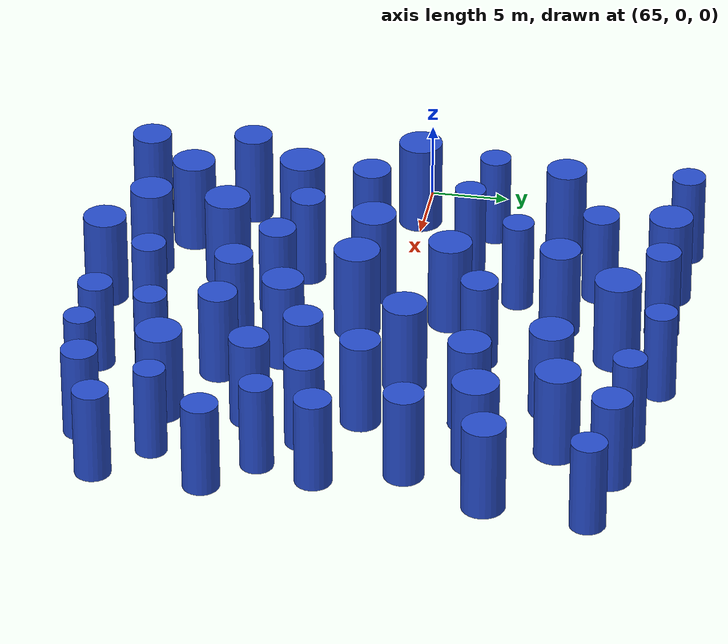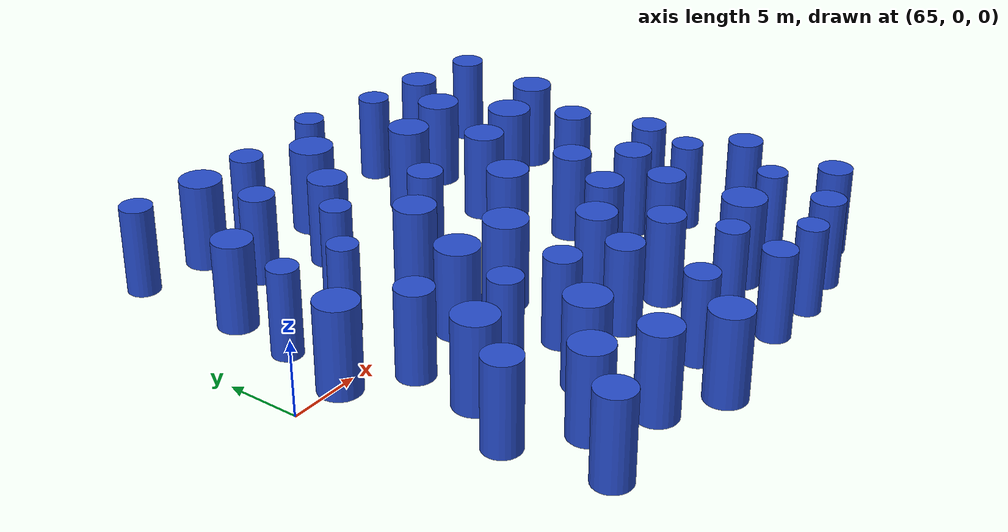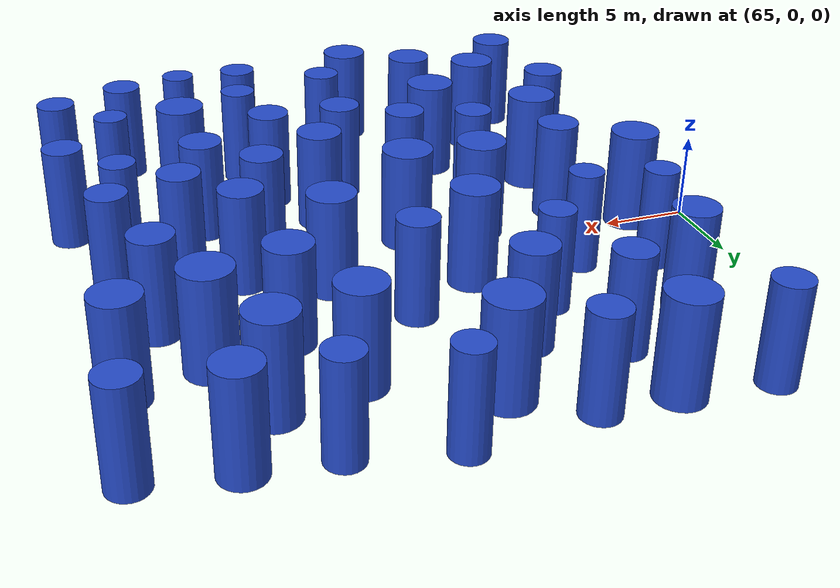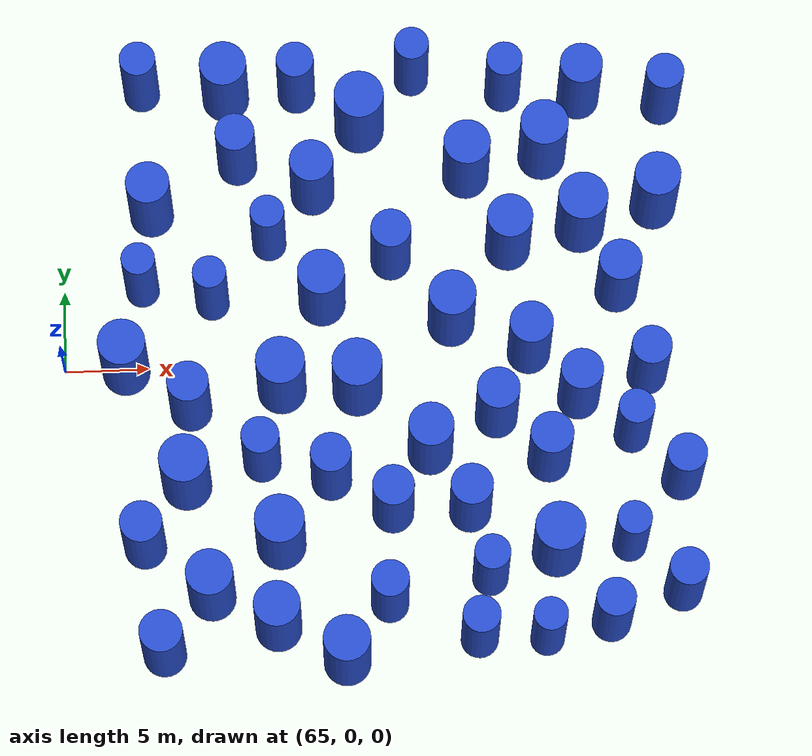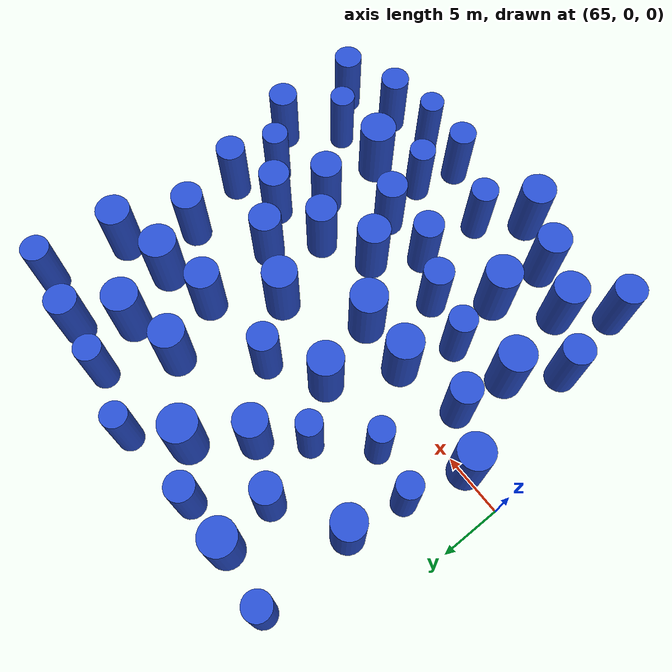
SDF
<sdf version="1.7">
 <world name="default">
  <model name="1">
   <static>1</static>
   <link name="link">
    <inertial>
     <mass>2</mass>
     <inertia><ixx>6.72296</ixx><ixy>0</ixy><ixz>0</ixz><iyy>6.72296</iyy><iyz>0</iyz><izz>1.44593</izz></inertia>
    </inertial>
    <collision name="collision">
     <geometry><cylinder><length>6</length><radius>1.20247</radius></cylinder></geometry>
     <surface><contact><collide_without_contact>1</collide_without_contact></contact></surface>
    </collision>
    <visual name="visual">
     <geometry><cylinder><length>6</length><radius>1.20247</radius></cylinder></geometry>
     <material>
      <script><uri>file://media/materials/scripts/gazebo.material</uri><name>Gazebo/Blue</name></script>
     </material>
    </visual>
    <gravity>0</gravity>
   </link>
   <pose>80.6973 -7.39447 3 0 -0 0</pose>
  </model>
  <model name="2">
   <static>1</static>
   <link name="link">
    <inertial>
     <mass>2</mass>
     <inertia><ixx>6.83423</ixx><ixy>0</ixy><ixz>0</ixz><iyy>6.83423</iyy><iyz>0</iyz><izz>1.66847</izz></inertia>
    </inertial>
    <collision name="collision">
     <geometry><cylinder><length>6</length><radius>1.29169</radius></cylinder></geometry>
     <surface><contact><collide_without_contact>1</collide_without_contact></contact></surface>
    </collision>
    <visual name="visual">
     <geometry><cylinder><length>6</length><radius>1.29169</radius></cylinder></geometry>
     <material>
      <script><uri>file://media/materials/scripts/gazebo.material</uri><name>Gazebo/Blue</name></script>
     </material>
    </visual>
    <gravity>0</gravity>
   </link>
   <pose>92.757 0.175366 3 0 -0 0</pose>
  </model>
  <model name="4">
   <static>1</static>
   <link name="link">
    <inertial>
     <mass>2</mass>
     <inertia><ixx>7.11213</ixx><ixy>0</ixy><ixz>0</ixz><iyy>7.11213</iyy><iyz>0</iyz><izz>2.22425</izz></inertia>
    </inertial>
    <collision name="collision">
     <geometry><cylinder><length>6</length><radius>1.49139</radius></cylinder></geometry>
     <surface><contact><collide_without_contact>1</collide_without_contact></contact></surface>
    </collision>
    <visual name="visual">
     <geometry><cylinder><length>6</length><radius>1.49139</radius></cylinder></geometry>
     <material>
      <script><uri>file://media/materials/scripts/gazebo.material</uri><name>Gazebo/Blue</name></script>
     </material>
    </visual>
    <gravity>0</gravity>
   </link>
   <pose>83.0964 14.8871 3 0 -0 0</pose>
  </model>
  <model name="5">
   <static>1</static>
   <link name="link">
    <inertial>
     <mass>2</mass>
     <inertia><ixx>6.9315</ixx><ixy>0</ixy><ixz>0</ixz><iyy>6.9315</iyy><iyz>0</iyz><izz>1.863</izz></inertia>
    </inertial>
    <collision name="collision">
     <geometry><cylinder><length>6</length><radius>1.36492</radius></cylinder></geometry>
     <surface><contact><collide_without_contact>1</collide_without_contact></contact></surface>
    </collision>
    <visual name="visual">
     <geometry><cylinder><length>6</length><radius>1.36492</radius></cylinder></geometry>
     <material>
      <script><uri>file://media/materials/scripts/gazebo.material</uri><name>Gazebo/Blue</name></script>
     </material>
    </visual>
    <gravity>0</gravity>
   </link>
   <pose>91.7951 6.85711 3 0 -0 0</pose>
  </model>
  <model name="9">
   <static>1</static>
   <link name="link">
    <inertial>
     <mass>2</mass>
     <inertia><ixx>6.71929</ixx><ixy>0</ixy><ixz>0</ixz><iyy>6.71929</iyy><iyz>0</iyz><izz>1.43859</izz></inertia>
    </inertial>
    <collision name="collision">
     <geometry><cylinder><length>6</length><radius>1.19941</radius></cylinder></geometry>
     <surface><contact><collide_without_contact>1</collide_without_contact></contact></surface>
    </collision>
    <visual name="visual">
     <geometry><cylinder><length>6</length><radius>1.19941</radius></cylinder></geometry>
     <material>
      <script><uri>file://media/materials/scripts/gazebo.material</uri><name>Gazebo/Blue</name></script>
     </material>
    </visual>
    <gravity>0</gravity>
   </link>
   <pose>84.7053 6.32276 3 0 -0 0</pose>
  </model>
  <model name="10">
   <static>1</static>
   <link name="link">
    <inertial>
     <mass>2</mass>
     <inertia><ixx>6.77724</ixx><ixy>0</ixy><ixz>0</ixz><iyy>6.77724</iyy><iyz>0</iyz><izz>1.55448</izz></inertia>
    </inertial>
    <collision name="collision">
     <geometry><cylinder><length>6</length><radius>1.24679</radius></cylinder></geometry>
     <surface><contact><collide_without_contact>1</collide_without_contact></contact></surface>
    </collision>
    <visual name="visual">
     <geometry><cylinder><length>6</length><radius>1.24679</radius></cylinder></geometry>
     <material>
      <script><uri>file://media/materials/scripts/gazebo.material</uri><name>Gazebo/Blue</name></script>
     </material>
    </visual>
    <gravity>0</gravity>
   </link>
   <pose>88.8436 -9.60499 3 0 -0 0</pose>
  </model>
  <model name="12">
   <static>1</static>
   <link name="link">
    <inertial>
     <mass>2</mass>
     <inertia><ixx>7.10079</ixx><ixy>0</ixy><ixz>0</ixz><iyy>7.10079</iyy><iyz>0</iyz><izz>2.20157</izz></inertia>
    </inertial>
    <collision name="collision">
     <geometry><cylinder><length>6</length><radius>1.48377</radius></cylinder></geometry>
     <surface><contact><collide_without_contact>1</collide_without_contact></contact></surface>
    </collision>
    <visual name="visual">
     <geometry><cylinder><length>6</length><radius>1.48377</radius></cylinder></geometry>
     <material>
      <script><uri>file://media/materials/scripts/gazebo.material</uri><name>Gazebo/Blue</name></script>
     </material>
    </visual>
    <gravity>0</gravity>
   </link>
   <pose>82.4183 -1.92681 3 0 -0 0</pose>
  </model>
  <model name="14">
   <static>1</static>
   <link name="link">
    <inertial>
     <mass>2</mass>
     <inertia><ixx>6.81118</ixx><ixy>0</ixy><ixz>0</ixz><iyy>6.81118</iyy><iyz>0</iyz><izz>1.62236</izz></inertia>
    </inertial>
    <collision name="collision">
     <geometry><cylinder><length>6</length><radius>1.27372</radius></cylinder></geometry>
     <surface><contact><collide_without_contact>1</collide_without_contact></contact></surface>
    </collision>
    <visual name="visual">
     <geometry><cylinder><length>6</length><radius>1.27372</radius></cylinder></geometry>
     <material>
      <script><uri>file://media/materials/scripts/gazebo.material</uri><name>Gazebo/Blue</name></script>
     </material>
    </visual>
    <gravity>0</gravity>
   </link>
   <pose>98.2023 3.86457 3 0 -0 0</pose>
  </model>
  <model name="18">
   <static>1</static>
   <link name="link">
    <inertial>
     <mass>2</mass>
     <inertia><ixx>7.03448</ixx><ixy>0</ixy><ixz>0</ixz><iyy>7.03448</iyy><iyz>0</iyz><izz>2.06895</izz></inertia>
    </inertial>
    <collision name="collision">
     <geometry><cylinder><length>6</length><radius>1.43839</radius></cylinder></geometry>
     <surface><contact><collide_without_contact>1</collide_without_contact></contact></surface>
    </collision>
    <visual name="visual">
     <geometry><cylinder><length>6</length><radius>1.43839</radius></cylinder></geometry>
     <material>
      <script><uri>file://media/materials/scripts/gazebo.material</uri><name>Gazebo/Blue</name></script>
     </material>
    </visual>
    <gravity>0</gravity>
   </link>
   <pose>94.1201 12.7132 3 0 -0 0</pose>
  </model>
  <model name="20">
   <static>1</static>
   <link name="link">
    <inertial>
     <mass>2</mass>
     <inertia><ixx>6.64731</ixx><ixy>0</ixy><ixz>0</ixz><iyy>6.64731</iyy><iyz>0</iyz><izz>1.29463</izz></inertia>
    </inertial>
    <collision name="collision">
     <geometry><cylinder><length>6</length><radius>1.13782</radius></cylinder></geometry>
     <surface><contact><collide_without_contact>1</collide_without_contact></contact></surface>
    </collision>
    <visual name="visual">
     <geometry><cylinder><length>6</length><radius>1.13782</radius></cylinder></geometry>
     <material>
      <script><uri>file://media/materials/scripts/gazebo.material</uri><name>Gazebo/Blue</name></script>
     </material>
    </visual>
    <gravity>0</gravity>
   </link>
   <pose>101.496 15.7288 3 0 -0 0</pose>
  </model>
  <model name="23">
   <static>1</static>
   <link name="link">
    <inertial>
     <mass>2</mass>
     <inertia><ixx>6.61631</ixx><ixy>0</ixy><ixz>0</ixz><iyy>6.61631</iyy><iyz>0</iyz><izz>1.23261</izz></inertia>
    </inertial>
    <collision name="collision">
     <geometry><cylinder><length>6</length><radius>1.11023</radius></cylinder></geometry>
     <surface><contact><collide_without_contact>1</collide_without_contact></contact></surface>
    </collision>
    <visual name="visual">
     <geometry><cylinder><length>6</length><radius>1.11023</radius></cylinder></geometry>
     <material>
      <script><uri>file://media/materials/scripts/gazebo.material</uri><name>Gazebo/Blue</name></script>
     </material>
    </visual>
    <gravity>0</gravity>
   </link>
   <pose>83.8898 -15.0889 3 0 -0 0</pose>
  </model>
  <model name="25">
   <static>1</static>
   <link name="link">
    <inertial>
     <mass>2</mass>
     <inertia><ixx>6.80277</ixx><ixy>0</ixy><ixz>0</ixz><iyy>6.80277</iyy><iyz>0</iyz><izz>1.60554</izz></inertia>
    </inertial>
    <collision name="collision">
     <geometry><cylinder><length>6</length><radius>1.2671</radius></cylinder></geometry>
     <surface><contact><collide_without_contact>1</collide_without_contact></contact></surface>
    </collision>
    <visual name="visual">
     <geometry><cylinder><length>6</length><radius>1.2671</radius></cylinder></geometry>
     <material>
      <script><uri>file://media/materials/scripts/gazebo.material</uri><name>Gazebo/Blue</name></script>
     </material>
    </visual>
    <gravity>0</gravity>
   </link>
   <pose>70.6013 -17.7327 3 0 -0 0</pose>
  </model>
  <model name="27">
   <static>1</static>
   <link name="link">
    <inertial>
     <mass>2</mass>
     <inertia><ixx>6.51088</ixx><ixy>0</ixy><ixz>0</ixz><iyy>6.51088</iyy><iyz>0</iyz><izz>1.02175</izz></inertia>
    </inertial>
    <collision name="collision">
     <geometry><cylinder><length>6</length><radius>1.01082</radius></cylinder></geometry>
     <surface><contact><collide_without_contact>1</collide_without_contact></contact></surface>
    </collision>
    <visual name="visual">
     <geometry><cylinder><length>6</length><radius>1.01082</radius></cylinder></geometry>
     <material>
      <script><uri>file://media/materials/scripts/gazebo.material</uri><name>Gazebo/Blue</name></script>
     </material>
    </visual>
    <gravity>0</gravity>
   </link>
   <pose>98.1711 -11.9642 3 0 -0 0</pose>
  </model>
  <model name="31">
   <static>1</static>
   <link name="link">
    <inertial>
     <mass>2</mass>
     <inertia><ixx>6.69535</ixx><ixy>0</ixy><ixz>0</ixz><iyy>6.69535</iyy><iyz>0</iyz><izz>1.3907</izz></inertia>
    </inertial>
    <collision name="collision">
     <geometry><cylinder><length>6</length><radius>1.17928</radius></cylinder></geometry>
     <surface><contact><collide_without_contact>1</collide_without_contact></contact></surface>
    </collision>
    <visual name="visual">
     <geometry><cylinder><length>6</length><radius>1.17928</radius></cylinder></geometry>
     <material>
      <script><uri>file://media/materials/scripts/gazebo.material</uri><name>Gazebo/Blue</name></script>
     </material>
    </visual>
    <gravity>0</gravity>
   </link>
   <pose>75.6136 12.7351 3 0 -0 0</pose>
  </model>
  <model name="32">
   <static>1</static>
   <link name="link">
    <inertial>
     <mass>2</mass>
     <inertia><ixx>6.5883</ixx><ixy>0</ixy><ixz>0</ixz><iyy>6.5883</iyy><iyz>0</iyz><izz>1.1766</izz></inertia>
    </inertial>
    <collision name="collision">
     <geometry><cylinder><length>6</length><radius>1.08471</radius></cylinder></geometry>
     <surface><contact><collide_without_contact>1</collide_without_contact></contact></surface>
    </collision>
    <visual name="visual">
     <geometry><cylinder><length>6</length><radius>1.08471</radius></cylinder></geometry>
     <material>
      <script><uri>file://media/materials/scripts/gazebo.material</uri><name>Gazebo/Blue</name></script>
     </material>
    </visual>
    <gravity>0</gravity>
   </link>
   <pose>69.8895 17.6498 3 0 -0 0</pose>
  </model>
  <model name="33">
   <static>1</static>
   <link name="link">
    <inertial>
     <mass>2</mass>
     <inertia><ixx>6.89526</ixx><ixy>0</ixy><ixz>0</ixz><iyy>6.89526</iyy><iyz>0</iyz><izz>1.79051</izz></inertia>
    </inertial>
    <collision name="collision">
     <geometry><cylinder><length>6</length><radius>1.3381</radius></cylinder></geometry>
     <surface><contact><collide_without_contact>1</collide_without_contact></contact></surface>
    </collision>
    <visual name="visual">
     <geometry><cylinder><length>6</length><radius>1.3381</radius></cylinder></geometry>
     <material>
      <script><uri>file://media/materials/scripts/gazebo.material</uri><name>Gazebo/Blue</name></script>
     </material>
    </visual>
    <gravity>0</gravity>
   </link>
   <pose>86.618 -5.88549 3 0 -0 0</pose>
  </model>
  <model name="36">
   <static>1</static>
   <link name="link">
    <inertial>
     <mass>2</mass>
     <inertia><ixx>6.63334</ixx><ixy>0</ixy><ixz>0</ixz><iyy>6.63334</iyy><iyz>0</iyz><izz>1.26667</izz></inertia>
    </inertial>
    <collision name="collision">
     <geometry><cylinder><length>6</length><radius>1.12547</radius></cylinder></geometry>
     <surface><contact><collide_without_contact>1</collide_without_contact></contact></surface>
    </collision>
    <visual name="visual">
     <geometry><cylinder><length>6</length><radius>1.12547</radius></cylinder></geometry>
     <material>
      <script><uri>file://media/materials/scripts/gazebo.material</uri><name>Gazebo/Blue</name></script>
     </material>
    </visual>
    <gravity>0</gravity>
   </link>
   <pose>76.6137 -6.194 3 0 -0 0</pose>
  </model>
  <model name="44">
   <static>1</static>
   <link name="link">
    <inertial>
     <mass>2</mass>
     <inertia><ixx>6.98634</ixx><ixy>0</ixy><ixz>0</ixz><iyy>6.98634</iyy><iyz>0</iyz><izz>1.97268</izz></inertia>
    </inertial>
    <collision name="collision">
     <geometry><cylinder><length>6</length><radius>1.40452</radius></cylinder></geometry>
     <surface><contact><collide_without_contact>1</collide_without_contact></contact></surface>
    </collision>
    <visual name="visual">
     <geometry><cylinder><length>6</length><radius>1.40452</radius></cylinder></geometry>
     <material>
      <script><uri>file://media/materials/scripts/gazebo.material</uri><name>Gazebo/Blue</name></script>
     </material>
    </visual>
    <gravity>0</gravity>
   </link>
   <pose>89.4482 11.619 3 0 -0 0</pose>
  </model>
  <model name="50">
   <static>1</static>
   <link name="link">
    <inertial>
     <mass>2</mass>
     <inertia><ixx>6.81815</ixx><ixy>0</ixy><ixz>0</ixz><iyy>6.81815</iyy><iyz>0</iyz><izz>1.6363</izz></inertia>
    </inertial>
    <collision name="collision">
     <geometry><cylinder><length>6</length><radius>1.27918</radius></cylinder></geometry>
     <surface><contact><collide_without_contact>1</collide_without_contact></contact></surface>
    </collision>
    <visual name="visual">
     <geometry><cylinder><length>6</length><radius>1.27918</radius></cylinder></geometry>
     <material>
      <script><uri>file://media/materials/scripts/gazebo.material</uri><name>Gazebo/Blue</name></script>
     </material>
    </visual>
    <gravity>0</gravity>
   </link>
   <pose>96.5079 16.4159 3 0 -0 0</pose>
  </model>
  <model name="51">
   <static>1</static>
   <link name="link">
    <inertial>
     <mass>2</mass>
     <inertia><ixx>6.52122</ixx><ixy>0</ixy><ixz>0</ixz><iyy>6.52122</iyy><iyz>0</iyz><izz>1.04245</izz></inertia>
    </inertial>
    <collision name="collision">
     <geometry><cylinder><length>6</length><radius>1.021</radius></cylinder></geometry>
     <surface><contact><collide_without_contact>1</collide_without_contact></contact></surface>
    </collision>
    <visual name="visual">
     <geometry><cylinder><length>6</length><radius>1.021</radius></cylinder></geometry>
     <material>
      <script><uri>file://media/materials/scripts/gazebo.material</uri><name>Gazebo/Blue</name></script>
     </material>
    </visual>
    <gravity>0</gravity>
   </link>
   <pose>77.4047 7.64189 3 0 -0 0</pose>
  </model>
  <model name="56">
   <static>1</static>
   <link name="link">
    <inertial>
     <mass>2</mass>
     <inertia><ixx>6.53606</ixx><ixy>0</ixy><ixz>0</ixz><iyy>6.53606</iyy><iyz>0</iyz><izz>1.07212</izz></inertia>
    </inertial>
    <collision name="collision">
     <geometry><cylinder><length>6</length><radius>1.03543</radius></cylinder></geometry>
     <surface><contact><collide_without_contact>1</collide_without_contact></contact></surface>
    </collision>
    <visual name="visual">
     <geometry><cylinder><length>6</length><radius>1.03543</radius></cylinder></geometry>
     <material>
      <script><uri>file://media/materials/scripts/gazebo.material</uri><name>Gazebo/Blue</name></script>
     </material>
    </visual>
    <gravity>0</gravity>
   </link>
   <pose>86.379 18.063 3 0 -0 0</pose>
  </model>
  <model name="57">
   <static>1</static>
   <link name="link">
    <inertial>
     <mass>2</mass>
     <inertia><ixx>6.76823</ixx><ixy>0</ixy><ixz>0</ixz><iyy>6.76823</iyy><iyz>0</iyz><izz>1.53647</izz></inertia>
    </inertial>
    <collision name="collision">
     <geometry><cylinder><length>6</length><radius>1.23954</radius></cylinder></geometry>
     <surface><contact><collide_without_contact>1</collide_without_contact></contact></surface>
    </collision>
    <visual name="visual">
     <geometry><cylinder><length>6</length><radius>1.23954</radius></cylinder></geometry>
     <material>
      <script><uri>file://media/materials/scripts/gazebo.material</uri><name>Gazebo/Blue</name></script>
     </material>
    </visual>
    <gravity>0</gravity>
   </link>
   <pose>72.4647 -2.75646 3 0 -0 0</pose>
  </model>
  <model name="58">
   <static>1</static>
   <link name="link">
    <inertial>
     <mass>2</mass>
     <inertia><ixx>6.93486</ixx><ixy>0</ixy><ixz>0</ixz><iyy>6.93486</iyy><iyz>0</iyz><izz>1.86972</izz></inertia>
    </inertial>
    <collision name="collision">
     <geometry><cylinder><length>6</length><radius>1.36738</radius></cylinder></geometry>
     <surface><contact><collide_without_contact>1</collide_without_contact></contact></surface>
    </collision>
    <visual name="visual">
     <geometry><cylinder><length>6</length><radius>1.36738</radius></cylinder></geometry>
     <material>
      <script><uri>file://media/materials/scripts/gazebo.material</uri><name>Gazebo/Blue</name></script>
     </material>
    </visual>
    <gravity>0</gravity>
   </link>
   <pose>77.3036 -16.3536 3 0 -0 0</pose>
  </model>
  <model name="62">
   <static>1</static>
   <link name="link">
    <inertial>
     <mass>2</mass>
     <inertia><ixx>6.81051</ixx><ixy>0</ixy><ixz>0</ixz><iyy>6.81051</iyy><iyz>0</iyz><izz>1.62103</izz></inertia>
    </inertial>
    <collision name="collision">
     <geometry><cylinder><length>6</length><radius>1.2732</radius></cylinder></geometry>
     <surface><contact><collide_without_contact>1</collide_without_contact></contact></surface>
    </collision>
    <visual name="visual">
     <geometry><cylinder><length>6</length><radius>1.2732</radius></cylinder></geometry>
     <material>
      <script><uri>file://media/materials/scripts/gazebo.material</uri><name>Gazebo/Blue</name></script>
     </material>
    </visual>
    <gravity>0</gravity>
   </link>
   <pose>93.6427 -6.6495 3 0 -0 0</pose>
  </model>
  <model name="63">
   <static>1</static>
   <link name="link">
    <inertial>
     <mass>2</mass>
     <inertia><ixx>6.7804</ixx><ixy>0</ixy><ixz>0</ixz><iyy>6.7804</iyy><iyz>0</iyz><izz>1.56081</izz></inertia>
    </inertial>
    <collision name="collision">
     <geometry><cylinder><length>6</length><radius>1.24932</radius></cylinder></geometry>
     <surface><contact><collide_without_contact>1</collide_without_contact></contact></surface>
    </collision>
    <visual name="visual">
     <geometry><cylinder><length>6</length><radius>1.24932</radius></cylinder></geometry>
     <material>
      <script><uri>file://media/materials/scripts/gazebo.material</uri><name>Gazebo/Blue</name></script>
     </material>
    </visual>
    <gravity>0</gravity>
   </link>
   <pose>69.5819 -11.1757 3 0 -0 0</pose>
  </model>
  <model name="64">
   <static>1</static>
   <link name="link">
    <inertial>
     <mass>2</mass>
     <inertia><ixx>6.61537</ixx><ixy>0</ixy><ixz>0</ixz><iyy>6.61537</iyy><iyz>0</iyz><izz>1.23074</izz></inertia>
    </inertial>
    <collision name="collision">
     <geometry><cylinder><length>6</length><radius>1.10939</radius></cylinder></geometry>
     <surface><contact><collide_without_contact>1</collide_without_contact></contact></surface>
    </collision>
    <visual name="visual">
     <geometry><cylinder><length>6</length><radius>1.10939</radius></cylinder></geometry>
     <material>
      <script><uri>file://media/materials/scripts/gazebo.material</uri><name>Gazebo/Blue</name></script>
     </material>
    </visual>
    <gravity>0</gravity>
   </link>
   <pose>89.071 -17.4014 3 0 -0 0</pose>
  </model>
  <model name="68">
   <static>1</static>
   <link name="link">
    <inertial>
     <mass>2</mass>
     <inertia><ixx>6.95071</ixx><ixy>0</ixy><ixz>0</ixz><iyy>6.95071</iyy><iyz>0</iyz><izz>1.90143</izz></inertia>
    </inertial>
    <collision name="collision">
     <geometry><cylinder><length>6</length><radius>1.37892</radius></cylinder></geometry>
     <surface><contact><collide_without_contact>1</collide_without_contact></contact></surface>
    </collision>
    <visual name="visual">
     <geometry><cylinder><length>6</length><radius>1.37892</radius></cylinder></geometry>
     <material>
      <script><uri>file://media/materials/scripts/gazebo.material</uri><name>Gazebo/Blue</name></script>
     </material>
    </visual>
    <gravity>0</gravity>
   </link>
   <pose>100.7 9.19752 3 0 -0 0</pose>
  </model>
  <model name="73">
   <static>1</static>
   <link name="link">
    <inertial>
     <mass>2</mass>
     <inertia><ixx>7.05981</ixx><ixy>0</ixy><ixz>0</ixz><iyy>7.05981</iyy><iyz>0</iyz><izz>2.11962</izz></inertia>
    </inertial>
    <collision name="collision">
     <geometry><cylinder><length>6</length><radius>1.45589</radius></cylinder></geometry>
     <surface><contact><collide_without_contact>1</collide_without_contact></contact></surface>
    </collision>
    <visual name="visual">
     <geometry><cylinder><length>6</length><radius>1.45589</radius></cylinder></geometry>
     <material>
      <script><uri>file://media/materials/scripts/gazebo.material</uri><name>Gazebo/Blue</name></script>
     </material>
    </visual>
    <gravity>0</gravity>
   </link>
   <pose>77.9144 -1.65153 3 0 -0 0</pose>
  </model>
  <model name="79">
   <static>1</static>
   <link name="link">
    <inertial>
     <mass>2</mass>
     <inertia><ixx>6.56349</ixx><ixy>0</ixy><ixz>0</ixz><iyy>6.56349</iyy><iyz>0</iyz><izz>1.12698</izz></inertia>
    </inertial>
    <collision name="collision">
     <geometry><cylinder><length>6</length><radius>1.06159</radius></cylinder></geometry>
     <surface><contact><collide_without_contact>1</collide_without_contact></contact></surface>
    </collision>
    <visual name="visual">
     <geometry><cylinder><length>6</length><radius>1.06159</radius></cylinder></geometry>
     <material>
      <script><uri>file://media/materials/scripts/gazebo.material</uri><name>Gazebo/Blue</name></script>
     </material>
    </visual>
    <gravity>0</gravity>
   </link>
   <pose>98.6614 -5.21791 3 0 -0 0</pose>
  </model>
  <model name="80">
   <static>1</static>
   <link name="link">
    <inertial>
     <mass>2</mass>
     <inertia><ixx>6.65702</ixx><ixy>0</ixy><ixz>0</ixz><iyy>6.65702</iyy><iyz>0</iyz><izz>1.31404</izz></inertia>
    </inertial>
    <collision name="collision">
     <geometry><cylinder><length>6</length><radius>1.14632</radius></cylinder></geometry>
     <surface><contact><collide_without_contact>1</collide_without_contact></contact></surface>
    </collision>
    <visual name="visual">
     <geometry><cylinder><length>6</length><radius>1.14632</radius></cylinder></geometry>
     <material>
      <script><uri>file://media/materials/scripts/gazebo.material</uri><name>Gazebo/Blue</name></script>
     </material>
    </visual>
    <gravity>0</gravity>
   </link>
   <pose>101.165 -14.9856 3 0 -0 0</pose>
  </model>
  <model name="81">
   <static>1</static>
   <link name="link">
    <inertial>
     <mass>2</mass>
     <inertia><ixx>6.58126</ixx><ixy>0</ixy><ixz>0</ixz><iyy>6.58126</iyy><iyz>0</iyz><izz>1.16252</izz></inertia>
    </inertial>
    <collision name="collision">
     <geometry><cylinder><length>6</length><radius>1.0782</radius></cylinder></geometry>
     <surface><contact><collide_without_contact>1</collide_without_contact></contact></surface>
    </collision>
    <visual name="visual">
     <geometry><cylinder><length>6</length><radius>1.0782</radius></cylinder></geometry>
     <material>
      <script><uri>file://media/materials/scripts/gazebo.material</uri><name>Gazebo/Blue</name></script>
     </material>
    </visual>
    <gravity>0</gravity>
   </link>
   <pose>91.91 16.8661 3 0 -0 0</pose>
  </model>
  <model name="82">
   <static>1</static>
   <link name="link">
    <inertial>
     <mass>2</mass>
     <inertia><ixx>6.67042</ixx><ixy>0</ixy><ixz>0</ixz><iyy>6.67042</iyy><iyz>0</iyz><izz>1.34084</izz></inertia>
    </inertial>
    <collision name="collision">
     <geometry><cylinder><length>6</length><radius>1.15795</radius></cylinder></geometry>
     <surface><contact><collide_without_contact>1</collide_without_contact></contact></surface>
    </collision>
    <visual name="visual">
     <geometry><cylinder><length>6</length><radius>1.15795</radius></cylinder></geometry>
     <material>
      <script><uri>file://media/materials/scripts/gazebo.material</uri><name>Gazebo/Blue</name></script>
     </material>
    </visual>
    <gravity>0</gravity>
   </link>
   <pose>96.8535 -16.6618 3 0 -0 0</pose>
  </model>
  <model name="86">
   <static>1</static>
   <link name="link">
    <inertial>
     <mass>2</mass>
     <inertia><ixx>6.8639</ixx><ixy>0</ixy><ixz>0</ixz><iyy>6.8639</iyy><iyz>0</iyz><izz>1.72781</izz></inertia>
    </inertial>
    <collision name="collision">
     <geometry><cylinder><length>6</length><radius>1.31446</radius></cylinder></geometry>
     <surface><contact><collide_without_contact>1</collide_without_contact></contact></surface>
    </collision>
    <visual name="visual">
     <geometry><cylinder><length>6</length><radius>1.31446</radius></cylinder></geometry>
     <material>
      <script><uri>file://media/materials/scripts/gazebo.material</uri><name>Gazebo/Blue</name></script>
     </material>
    </visual>
    <gravity>0</gravity>
   </link>
   <pose>70.3495 9.71984 3 0 -0 0</pose>
  </model>
  <model name="90">
   <static>1</static>
   <link name="link">
    <inertial>
     <mass>2</mass>
     <inertia><ixx>6.86273</ixx><ixy>0</ixy><ixz>0</ixz><iyy>6.86273</iyy><iyz>0</iyz><izz>1.72547</izz></inertia>
    </inertial>
    <collision name="collision">
     <geometry><cylinder><length>6</length><radius>1.31357</radius></cylinder></geometry>
     <surface><contact><collide_without_contact>1</collide_without_contact></contact></surface>
    </collision>
    <visual name="visual">
     <geometry><cylinder><length>6</length><radius>1.31357</radius></cylinder></geometry>
     <material>
      <script><uri>file://media/materials/scripts/gazebo.material</uri><name>Gazebo/Blue</name></script>
     </material>
    </visual>
    <gravity>0</gravity>
   </link>
   <pose>80.1232 10.77 3 0 -0 0</pose>
  </model>
  <model name="96">
   <static>1</static>
   <link name="link">
    <inertial>
     <mass>2</mass>
     <inertia><ixx>6.70134</ixx><ixy>0</ixy><ixz>0</ixz><iyy>6.70134</iyy><iyz>0</iyz><izz>1.40269</izz></inertia>
    </inertial>
    <collision name="collision">
     <geometry><cylinder><length>6</length><radius>1.18435</radius></cylinder></geometry>
     <surface><contact><collide_without_contact>1</collide_without_contact></contact></surface>
    </collision>
    <visual name="visual">
     <geometry><cylinder><length>6</length><radius>1.18435</radius></cylinder></geometry>
     <material>
      <script><uri>file://media/materials/scripts/gazebo.material</uri><name>Gazebo/Blue</name></script>
     </material>
    </visual>
    <gravity>0</gravity>
   </link>
   <pose>99.755 -1.486 3 0 -0 0</pose>
  </model>
  <model name="103">
   <static>1</static>
   <link name="link">
    <inertial>
     <mass>2</mass>
     <inertia><ixx>7.0039</ixx><ixy>0</ixy><ixz>0</ixz><iyy>7.0039</iyy><iyz>0</iyz><izz>2.0078</izz></inertia>
    </inertial>
    <collision name="collision">
     <geometry><cylinder><length>6</length><radius>1.41697</radius></cylinder></geometry>
     <surface><contact><collide_without_contact>1</collide_without_contact></contact></surface>
    </collision>
    <visual name="visual">
     <geometry><cylinder><length>6</length><radius>1.41697</radius></cylinder></geometry>
     <material>
      <script><uri>file://media/materials/scripts/gazebo.material</uri><name>Gazebo/Blue</name></script>
     </material>
    </visual>
    <gravity>0</gravity>
   </link>
   <pose>68.6291 -0.19702 3 0 -0 0</pose>
  </model>
  <model name="105">
   <static>1</static>
   <link name="link">
    <inertial>
     <mass>2</mass>
     <inertia><ixx>6.99525</ixx><ixy>0</ixy><ixz>0</ixz><iyy>6.99525</iyy><iyz>0</iyz><izz>1.99049</izz></inertia>
    </inertial>
    <collision name="collision">
     <geometry><cylinder><length>6</length><radius>1.41085</radius></cylinder></geometry>
     <surface><contact><collide_without_contact>1</collide_without_contact></contact></surface>
    </collision>
    <visual name="visual">
     <geometry><cylinder><length>6</length><radius>1.41085</radius></cylinder></geometry>
     <material>
      <script><uri>file://media/materials/scripts/gazebo.material</uri><name>Gazebo/Blue</name></script>
     </material>
    </visual>
    <gravity>0</gravity>
   </link>
   <pose>75.007 17.1649 3 0 -0 0</pose>
  </model>
  <model name="111">
   <static>1</static>
   <link name="link">
    <inertial>
     <mass>2</mass>
     <inertia><ixx>6.75808</ixx><ixy>0</ixy><ixz>0</ixz><iyy>6.75808</iyy><iyz>0</iyz><izz>1.51616</izz></inertia>
    </inertial>
    <collision name="collision">
     <geometry><cylinder><length>6</length><radius>1.23132</radius></cylinder></geometry>
     <surface><contact><collide_without_contact>1</collide_without_contact></contact></surface>
    </collision>
    <visual name="visual">
     <geometry><cylinder><length>6</length><radius>1.23132</radius></cylinder></geometry>
     <material>
      <script><uri>file://media/materials/scripts/gazebo.material</uri><name>Gazebo/Blue</name></script>
     </material>
    </visual>
    <gravity>0</gravity>
   </link>
   <pose>84.2762 -9.50467 3 0 -0 0</pose>
  </model>
  <model name="112">
   <static>1</static>
   <link name="link">
    <inertial>
     <mass>2</mass>
     <inertia><ixx>6.98453</ixx><ixy>0</ixy><ixz>0</ixz><iyy>6.98453</iyy><iyz>0</iyz><izz>1.96906</izz></inertia>
    </inertial>
    <collision name="collision">
     <geometry><cylinder><length>6</length><radius>1.40323</radius></cylinder></geometry>
     <surface><contact><collide_without_contact>1</collide_without_contact></contact></surface>
    </collision>
    <visual name="visual">
     <geometry><cylinder><length>6</length><radius>1.40323</radius></cylinder></geometry>
     <material>
      <script><uri>file://media/materials/scripts/gazebo.material</uri><name>Gazebo/Blue</name></script>
     </material>
    </visual>
    <gravity>0</gravity>
   </link>
   <pose>80.4849 3.7455 3 0 -0 0</pose>
  </model>
  <model name="118">
   <static>1</static>
   <link name="link">
    <inertial>
     <mass>2</mass>
     <inertia><ixx>6.56119</ixx><ixy>0</ixy><ixz>0</ixz><iyy>6.56119</iyy><iyz>0</iyz><izz>1.12238</izz></inertia>
    </inertial>
    <collision name="collision">
     <geometry><cylinder><length>6</length><radius>1.05942</radius></cylinder></geometry>
     <surface><contact><collide_without_contact>1</collide_without_contact></contact></surface>
    </collision>
    <visual name="visual">
     <geometry><cylinder><length>6</length><radius>1.05942</radius></cylinder></geometry>
     <material>
      <script><uri>file://media/materials/scripts/gazebo.material</uri><name>Gazebo/Blue</name></script>
     </material>
    </visual>
    <gravity>0</gravity>
   </link>
   <pose>89.8534 -13.7131 3 0 -0 0</pose>
  </model>
  <model name="119">
   <static>1</static>
   <link name="link">
    <inertial>
     <mass>2</mass>
     <inertia><ixx>6.50676</ixx><ixy>0</ixy><ixz>0</ixz><iyy>6.50676</iyy><iyz>0</iyz><izz>1.01351</izz></inertia>
    </inertial>
    <collision name="collision">
     <geometry><cylinder><length>6</length><radius>1.00673</radius></cylinder></geometry>
     <surface><contact><collide_without_contact>1</collide_without_contact></contact></surface>
    </collision>
    <visual name="visual">
     <geometry><cylinder><length>6</length><radius>1.00673</radius></cylinder></geometry>
     <material>
      <script><uri>file://media/materials/scripts/gazebo.material</uri><name>Gazebo/Blue</name></script>
     </material>
    </visual>
    <gravity>0</gravity>
   </link>
   <pose>73.8903 3.9576 3 0 -0 0</pose>
  </model>
  <model name="120">
   <static>1</static>
   <link name="link">
    <inertial>
     <mass>2</mass>
     <inertia><ixx>6.68474</ixx><ixy>0</ixy><ixz>0</ixz><iyy>6.68474</iyy><iyz>0</iyz><izz>1.36948</izz></inertia>
    </inertial>
    <collision name="collision">
     <geometry><cylinder><length>6</length><radius>1.17025</radius></cylinder></geometry>
     <surface><contact><collide_without_contact>1</collide_without_contact></contact></surface>
    </collision>
    <visual name="visual">
     <geometry><cylinder><length>6</length><radius>1.17025</radius></cylinder></geometry>
     <material>
      <script><uri>file://media/materials/scripts/gazebo.material</uri><name>Gazebo/Blue</name></script>
     </material>
    </visual>
    <gravity>0</gravity>
   </link>
   <pose>101.443 -8.14538 3 0 -0 0</pose>
  </model>
  <model name="121">
   <static>1</static>
   <link name="link">
    <inertial>
     <mass>2</mass>
     <inertia><ixx>7.07564</ixx><ixy>0</ixy><ixz>0</ixz><iyy>7.07564</iyy><iyz>0</iyz><izz>2.15128</izz></inertia>
    </inertial>
    <collision name="collision">
     <geometry><cylinder><length>6</length><radius>1.46672</radius></cylinder></geometry>
     <surface><contact><collide_without_contact>1</collide_without_contact></contact></surface>
    </collision>
    <visual name="visual">
     <geometry><cylinder><length>6</length><radius>1.46672</radius></cylinder></geometry>
     <material>
      <script><uri>file://media/materials/scripts/gazebo.material</uri><name>Gazebo/Blue</name></script>
     </material>
    </visual>
    <gravity>0</gravity>
   </link>
   <pose>77.5996 -11.2796 3 0 -0 0</pose>
  </model>
  <model name="123">
   <static>1</static>
   <link name="link">
    <inertial>
     <mass>2</mass>
     <inertia><ixx>7.07717</ixx><ixy>0</ixy><ixz>0</ixz><iyy>7.07717</iyy><iyz>0</iyz><izz>2.15435</izz></inertia>
    </inertial>
    <collision name="collision">
     <geometry><cylinder><length>6</length><radius>1.46777</radius></cylinder></geometry>
     <surface><contact><collide_without_contact>1</collide_without_contact></contact></surface>
    </collision>
    <visual name="visual">
     <geometry><cylinder><length>6</length><radius>1.46777</radius></cylinder></geometry>
     <material>
      <script><uri>file://media/materials/scripts/gazebo.material</uri><name>Gazebo/Blue</name></script>
     </material>
    </visual>
    <gravity>0</gravity>
   </link>
   <pose>93.8461 -12.3054 3 0 -0 0</pose>
  </model>
  <model name="125">
   <static>1</static>
   <link name="link">
    <inertial>
     <mass>2</mass>
     <inertia><ixx>6.98832</ixx><ixy>0</ixy><ixz>0</ixz><iyy>6.98832</iyy><iyz>0</iyz><izz>1.97664</izz></inertia>
    </inertial>
    <collision name="collision">
     <geometry><cylinder><length>6</length><radius>1.40593</radius></cylinder></geometry>
     <surface><contact><collide_without_contact>1</collide_without_contact></contact></surface>
    </collision>
    <visual name="visual">
     <geometry><cylinder><length>6</length><radius>1.40593</radius></cylinder></geometry>
     <material>
      <script><uri>file://media/materials/scripts/gazebo.material</uri><name>Gazebo/Blue</name></script>
     </material>
    </visual>
    <gravity>0</gravity>
   </link>
   <pose>88.1856 2.16722 3 0 -0 0</pose>
  </model>
  <model name="128">
   <static>1</static>
   <link name="link">
    <inertial>
     <mass>2</mass>
     <inertia><ixx>7.10082</ixx><ixy>0</ixy><ixz>0</ixz><iyy>7.10082</iyy><iyz>0</iyz><izz>2.20164</izz></inertia>
    </inertial>
    <collision name="collision">
     <geometry><cylinder><length>6</length><radius>1.48379</radius></cylinder></geometry>
     <surface><contact><collide_without_contact>1</collide_without_contact></contact></surface>
    </collision>
    <visual name="visual">
     <geometry><cylinder><length>6</length><radius>1.48379</radius></cylinder></geometry>
     <material>
      <script><uri>file://media/materials/scripts/gazebo.material</uri><name>Gazebo/Blue</name></script>
     </material>
    </visual>
    <gravity>0</gravity>
   </link>
   <pose>96.1978 7.95611 3 0 -0 0</pose>
  </model>
  <model name="134">
   <static>1</static>
   <link name="link">
    <inertial>
     <mass>2</mass>
     <inertia><ixx>6.96295</ixx><ixy>0</ixy><ixz>0</ixz><iyy>6.96295</iyy><iyz>0</iyz><izz>1.92591</izz></inertia>
    </inertial>
    <collision name="collision">
     <geometry><cylinder><length>6</length><radius>1.38777</radius></cylinder></geometry>
     <surface><contact><collide_without_contact>1</collide_without_contact></contact></surface>
    </collision>
    <visual name="visual">
     <geometry><cylinder><length>6</length><radius>1.38777</radius></cylinder></geometry>
     <material>
      <script><uri>file://media/materials/scripts/gazebo.material</uri><name>Gazebo/Blue</name></script>
     </material>
    </visual>
    <gravity>0</gravity>
   </link>
   <pose>73.4629 -14.3411 3 0 -0 0</pose>
  </model>
  <model name="139">
   <static>1</static>
   <link name="link">
    <inertial>
     <mass>2</mass>
     <inertia><ixx>6.63647</ixx><ixy>0</ixy><ixz>0</ixz><iyy>6.63647</iyy><iyz>0</iyz><izz>1.27294</izz></inertia>
    </inertial>
    <collision name="collision">
     <geometry><cylinder><length>6</length><radius>1.12825</radius></cylinder></geometry>
     <surface><contact><collide_without_contact>1</collide_without_contact></contact></surface>
    </collision>
    <visual name="visual">
     <geometry><cylinder><length>6</length><radius>1.12825</radius></cylinder></geometry>
     <material>
      <script><uri>file://media/materials/scripts/gazebo.material</uri><name>Gazebo/Blue</name></script>
     </material>
    </visual>
    <gravity>0</gravity>
   </link>
   <pose>79.3365 17.2647 3 0 -0 0</pose>
  </model>
  <model name="141">
   <static>1</static>
   <link name="link">
    <inertial>
     <mass>2</mass>
     <inertia><ixx>6.50687</ixx><ixy>0</ixy><ixz>0</ixz><iyy>6.50687</iyy><iyz>0</iyz><izz>1.01374</izz></inertia>
    </inertial>
    <collision name="collision">
     <geometry><cylinder><length>6</length><radius>1.00685</radius></cylinder></geometry>
     <surface><contact><collide_without_contact>1</collide_without_contact></contact></surface>
    </collision>
    <visual name="visual">
     <geometry><cylinder><length>6</length><radius>1.00685</radius></cylinder></geometry>
     <material>
      <script><uri>file://media/materials/scripts/gazebo.material</uri><name>Gazebo/Blue</name></script>
     </material>
    </visual>
    <gravity>0</gravity>
   </link>
   <pose>69.7003 4.94156 3 0 -0 0</pose>
  </model>
  <model name="144">
   <static>1</static>
   <link name="link">
    <inertial>
     <mass>2</mass>
     <inertia><ixx>7.07591</ixx><ixy>0</ixy><ixz>0</ixz><iyy>7.07591</iyy><iyz>0</iyz><izz>2.15182</izz></inertia>
    </inertial>
    <collision name="collision">
     <geometry><cylinder><length>6</length><radius>1.46691</radius></cylinder></geometry>
     <surface><contact><collide_without_contact>1</collide_without_contact></contact></surface>
    </collision>
    <visual name="visual">
     <geometry><cylinder><length>6</length><radius>1.46691</radius></cylinder></geometry>
     <material>
      <script><uri>file://media/materials/scripts/gazebo.material</uri><name>Gazebo/Blue</name></script>
     </material>
    </visual>
    <gravity>0</gravity>
   </link>
   <pose>72.1199 -7.42896 3 0 -0 0</pose>
  </model>
  <model name="147">
   <static>1</static>
   <link name="link">
    <inertial>
     <mass>2</mass>
     <inertia><ixx>6.8032</ixx><ixy>0</ixy><ixz>0</ixz><iyy>6.8032</iyy><iyz>0</iyz><izz>1.6064</izz></inertia>
    </inertial>
    <collision name="collision">
     <geometry><cylinder><length>6</length><radius>1.26744</radius></cylinder></geometry>
     <surface><contact><collide_without_contact>1</collide_without_contact></contact></surface>
    </collision>
    <visual name="visual">
     <geometry><cylinder><length>6</length><radius>1.26744</radius></cylinder></geometry>
     <material>
      <script><uri>file://media/materials/scripts/gazebo.material</uri><name>Gazebo/Blue</name></script>
     </material>
    </visual>
    <gravity>0</gravity>
   </link>
   <pose>90.6384 -3.81068 3 0 -0 0</pose>
  </model>
  <model name="151">
   <static>1</static>
   <link name="link">
    <inertial>
     <mass>2</mass>
     <inertia><ixx>6.5</ixx><ixy>0</ixy><ixz>0</ixz><iyy>6.5</iyy><iyz>0</iyz><izz>1</izz></inertia>
    </inertial>
    <collision name="collision">
     <geometry><cylinder><length>6</length><radius>1</radius></cylinder></geometry>
     <surface><contact><collide_without_contact>1</collide_without_contact></contact></surface>
    </collision>
    <visual name="visual">
     <geometry><cylinder><length>6</length><radius>1</radius></cylinder></geometry>
     <material>
      <script><uri>file://media/materials/scripts/gazebo.material</uri><name>Gazebo/Blue</name></script>
     </material>
    </visual>
    <gravity>0</gravity>
   </link>
   <pose>93.0442 -17.5179 3 0 -0 0</pose>
  </model>
  <model name="153">
   <static>1</static>
   <link name="link">
    <inertial>
     <mass>2</mass>
     <inertia><ixx>6.95615</ixx><ixy>0</ixy><ixz>0</ixz><iyy>6.95615</iyy><iyz>0</iyz><izz>1.9123</izz></inertia>
    </inertial>
    <collision name="collision">
     <geometry><cylinder><length>6</length><radius>1.38286</radius></cylinder></geometry>
     <surface><contact><collide_without_contact>1</collide_without_contact></contact></surface>
    </collision>
    <visual name="visual">
     <geometry><cylinder><length>6</length><radius>1.38286</radius></cylinder></geometry>
     <material>
      <script><uri>file://media/materials/scripts/gazebo.material</uri><name>Gazebo/Blue</name></script>
     </material>
    </visual>
    <gravity>0</gravity>
   </link>
   <pose>81.2718 -18.5316 3 0 -0 0</pose>
  </model>
  <model name="157">
   <static>1</static>
   <link name="link">
    <inertial>
     <mass>2</mass>
     <inertia><ixx>6.7832</ixx><ixy>0</ixy><ixz>0</ixz><iyy>6.7832</iyy><iyz>0</iyz><izz>1.56641</izz></inertia>
    </inertial>
    <collision name="collision">
     <geometry><cylinder><length>6</length><radius>1.25156</radius></cylinder></geometry>
     <surface><contact><collide_without_contact>1</collide_without_contact></contact></surface>
    </collision>
    <visual name="visual">
     <geometry><cylinder><length>6</length><radius>1.25156</radius></cylinder></geometry>
     <material>
      <script><uri>file://media/materials/scripts/gazebo.material</uri><name>Gazebo/Blue</name></script>
     </material>
    </visual>
    <gravity>0</gravity>
   </link>
   <pose>95.5862 -2.82289 3 0 -0 0</pose>
  </model>
 </world>
</sdf>
